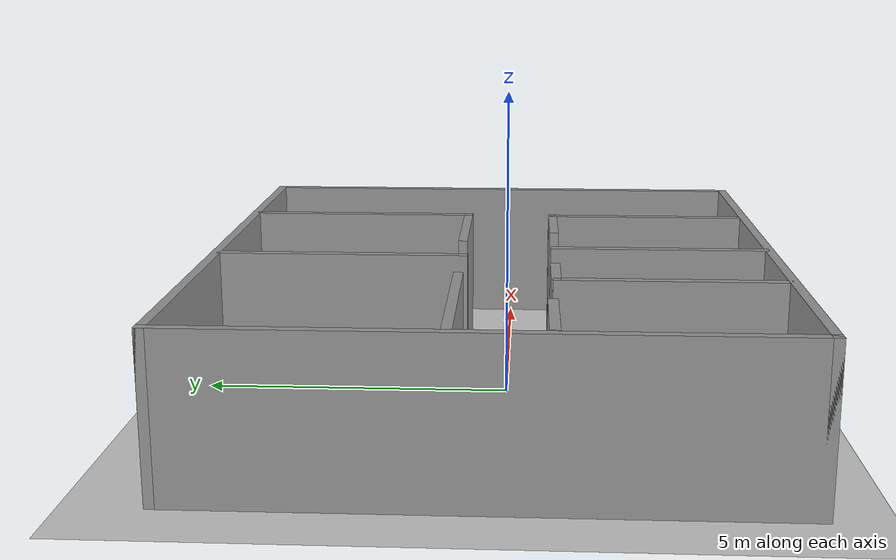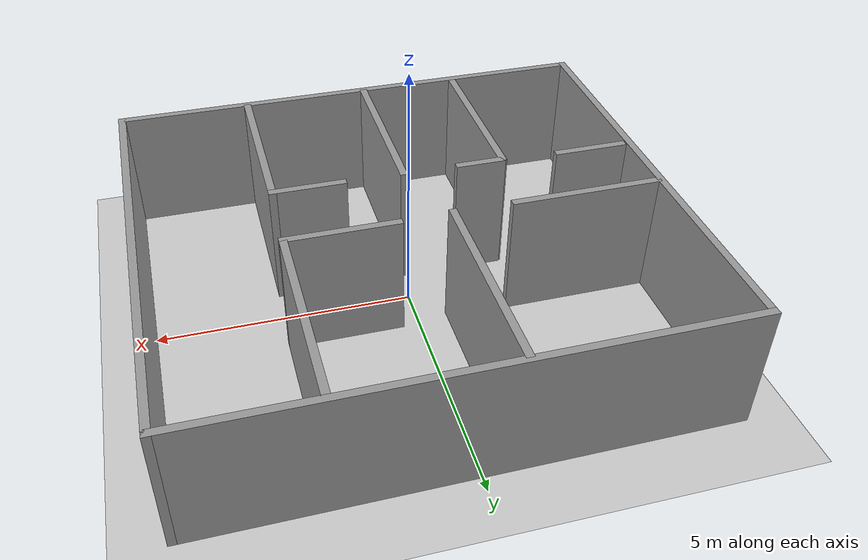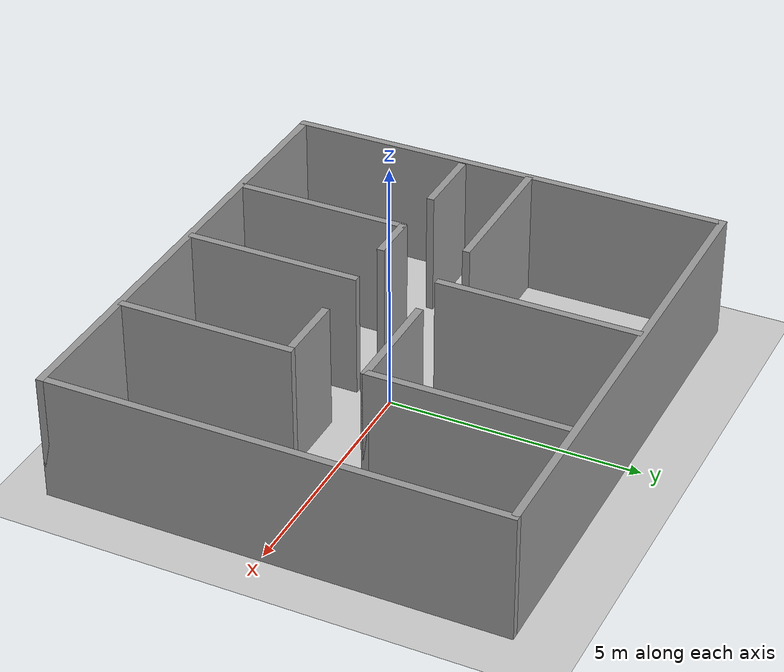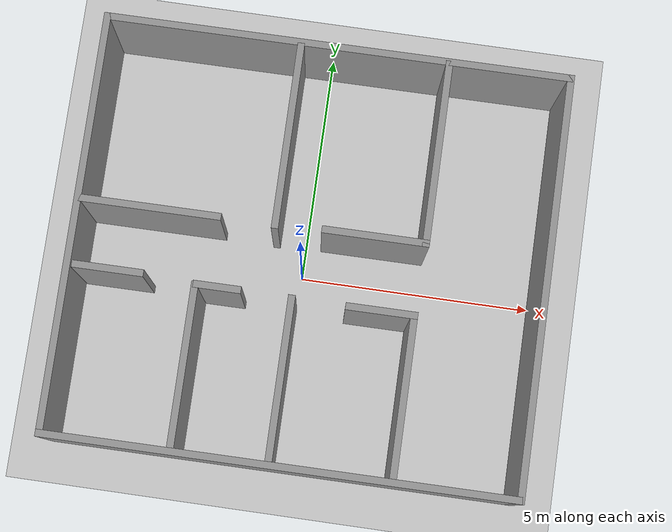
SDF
<sdf version="1.7">
 <world name="default">
  <light name="sun" type="directional">
   <pose>0 0 10 0 -0 0</pose>
   <diffuse>0.8 0.8 0.8 1</diffuse>
   <specular>0.2 0.2 0.2 1</specular>
   <attenuation>
    <range>1000</range>
    <constant>0.9</constant>
    <linear>0.01</linear>
    <quadratic>0.001</quadratic>
   </attenuation>
   <direction>-0.5 0.1 -0.9</direction>
   <spot><inner_angle>0</inner_angle><outer_angle>0</outer_angle><falloff>0</falloff></spot>
  </light>
  <model name="ground_plane">
   <static>1</static>
   <link name="link">
    <collision name="collision">
     <geometry><plane><normal>0 0 1</normal><size>100 100</size></plane></geometry>
     <surface>
      <contact><collide_bitmask>65535</collide_bitmask></contact>
      <friction><ode><mu>100</mu><mu2>50</mu2></ode></friction>
     </surface>
    </collision>
    <visual name="visual">
     <cast_shadows>0</cast_shadows>
     <geometry><plane><normal>0 0 1</normal><size>100 100</size></plane></geometry>
     <material>
      <script><uri>file://media/materials/scripts/gazebo.material</uri><name>Gazebo/Grey</name></script>
     </material>
    </visual>
   </link>
  </model>
  <gravity>0 0 -9.8</gravity>
  <magnetic_field>6e-06 2.3e-05 -4.2e-05</magnetic_field>
  <atmosphere type="adiabatic"/>
  <physics type="ode">
   <max_step_size>0.001</max_step_size>
   <real_time_factor>1</real_time_factor>
   <real_time_update_rate>1000</real_time_update_rate>
  </physics>
  <scene><ambient>0.4 0.4 0.4 1</ambient><background>0.7 0.7 0.7 1</background><shadows>1</shadows></scene>
  <audio><device>default</device></audio>
  <spherical_coordinates>
   <surface_model>EARTH_WGS84</surface_model>
   <latitude_deg>0</latitude_deg>
   <longitude_deg>0</longitude_deg>
   <elevation>0</elevation>
   <heading_deg>0</heading_deg>
  </spherical_coordinates>
  <model name="room2">
   <pose>0.13719 -1.24531 0 0 0 -1.56805</pose>
   <link name="Wall_0">
    <collision name="Wall_0_Collision">
     <geometry><box><size>9 0.15 2.5</size></box></geometry>
     <pose>0 0 1.25 0 -0 0</pose>
    </collision>
    <visual name="Wall_0_Visual">
     <pose>0 0 1.25 0 -0 0</pose>
     <geometry><box><size>9 0.15 2.5</size></box></geometry>
     <material>
      <script><uri>file://media/materials/scripts/gazebo.material</uri><name>Gazebo/Grey</name></script>
      <ambient>1 1 1 1</ambient>
     </material>
     <meta><layer>0</layer></meta>
    </visual>
    <pose>-1.46428 4.925 0 0 -0 0</pose>
   </link>
   <link name="Wall_10">
    <collision name="Wall_10_Collision">
     <geometry><box><size>2.25 0.15 2.5</size></box></geometry>
     <pose>0 0 1.25 0 -0 0</pose>
    </collision>
    <visual name="Wall_10_Visual">
     <pose>0 0 1.25 0 -0 0</pose>
     <geometry><box><size>2.25 0.15 2.5</size></box></geometry>
     <material>
      <script><uri>file://media/materials/scripts/gazebo.material</uri><name>Gazebo/Grey</name></script>
      <ambient>1 1 1 1</ambient>
     </material>
     <meta><layer>0</layer></meta>
    </visual>
    <pose>-1.99031 1.30907 0 0 -0 -1.5708</pose>
   </link>
   <link name="Wall_12">
    <collision name="Wall_12_Collision">
     <geometry><box><size>4 0.15 2.5</size></box></geometry>
     <pose>0 0 1.25 0 -0 0</pose>
    </collision>
    <visual name="Wall_12_Visual">
     <pose>0 0 1.25 0 -0 0</pose>
     <geometry><box><size>4 0.15 2.5</size></box></geometry>
     <material>
      <script><uri>file://media/materials/scripts/gazebo.material</uri><name>Gazebo/Grey</name></script>
      <ambient>1 1 1 1</ambient>
     </material>
     <meta><layer>0</layer></meta>
    </visual>
    <pose>-3.86905 -0.786697 0 0 -0 0</pose>
   </link>
   <link name="Wall_14">
    <collision name="Wall_14_Collision">
     <geometry><box><size>3 0.15 2.5</size></box></geometry>
     <pose>0 0 1.25 0 -0 0</pose>
    </collision>
    <visual name="Wall_14_Visual">
     <pose>0 0 1.25 0 -0 0</pose>
     <geometry><box><size>3 0.15 2.5</size></box></geometry>
     <material>
      <script><uri>file://media/materials/scripts/gazebo.material</uri><name>Gazebo/Grey</name></script>
      <ambient>1 1 1 1</ambient>
     </material>
     <meta><layer>0</layer></meta>
    </visual>
    <pose>-1.95437 -3.41449 0 0 -0 -1.5708</pose>
   </link>
   <link name="Wall_16">
    <collision name="Wall_16_Collision">
     <geometry><box><size>3.5 0.15 2.5</size></box></geometry>
     <pose>0 0 1.25 0 -0 0</pose>
    </collision>
    <visual name="Wall_16_Visual">
     <pose>0 0 1.25 0 -0 0</pose>
     <geometry><box><size>3.5 0.15 2.5</size></box></geometry>
     <material>
      <script><uri>file://media/materials/scripts/gazebo.material</uri><name>Gazebo/Grey</name></script>
      <ambient>1 1 1 1</ambient>
     </material>
     <meta><layer>0</layer></meta>
    </visual>
    <pose>1.20493 2.3128 0 0 -0 3.14159</pose>
   </link>
   <link name="Wall_19">
    <collision name="Wall_19_Collision">
     <geometry><box><size>3.5 0.15 2.5</size></box></geometry>
     <pose>0 0 1.25 0 -0 0</pose>
    </collision>
    <visual name="Wall_19_Visual">
     <pose>0 0 1.25 0 -0 0</pose>
     <geometry><box><size>3.5 0.15 2.5</size></box></geometry>
     <material>
      <script><uri>file://media/materials/scripts/gazebo.material</uri><name>Gazebo/Grey</name></script>
      <ambient>1 1 1 1</ambient>
     </material>
     <meta><layer>0</layer></meta>
    </visual>
    <pose>1.20493 -0.231562 0 0 -0 3.14159</pose>
   </link>
   <link name="Wall_2">
    <collision name="Wall_2_Collision">
     <geometry><box><size>10 0.15 2.5</size></box></geometry>
     <pose>0 0 1.25 0 -0 0</pose>
    </collision>
    <visual name="Wall_2_Visual">
     <pose>0 0 1.25 0 -0 0</pose>
     <geometry><box><size>10 0.15 2.5</size></box></geometry>
     <material>
      <script><uri>file://media/materials/scripts/gazebo.material</uri><name>Gazebo/Grey</name></script>
      <ambient>1 1 1 1</ambient>
     </material>
     <meta><layer>0</layer></meta>
    </visual>
    <pose>-5.88928 -0 0 0 -0 -1.5708</pose>
   </link>
   <link name="Wall_25">
    <collision name="Wall_25_Collision">
     <geometry><box><size>1.5 0.15 2.5</size></box></geometry>
     <pose>0 0 1.25 0 -0 0</pose>
    </collision>
    <visual name="Wall_25_Visual">
     <pose>0 0 1.25 0 -0 0</pose>
     <geometry><box><size>1.5 0.15 2.5</size></box></geometry>
     <material>
      <script><uri>file://media/materials/scripts/gazebo.material</uri><name>Gazebo/Grey</name></script>
      <ambient>1 1 1 1</ambient>
     </material>
     <meta><layer>0</layer></meta>
    </visual>
    <pose>-0.47007 1.6378 0 0 -0 -1.5708</pose>
   </link>
   <link name="Wall_28">
    <collision name="Wall_28_Collision">
     <geometry><box><size>3.5 0.15 2.5</size></box></geometry>
     <pose>0 0 1.25 0 -0 0</pose>
    </collision>
    <visual name="Wall_28_Visual">
     <pose>0 0 1.25 0 -0 0</pose>
     <geometry><box><size>3.5 0.15 2.5</size></box></geometry>
     <material>
      <script><uri>file://media/materials/scripts/gazebo.material</uri><name>Gazebo/Grey</name></script>
      <ambient>1 1 1 1</ambient>
     </material>
     <meta><layer>0</layer></meta>
    </visual>
    <pose>1.20049 -2.24392 0 0 -0 3.14159</pose>
   </link>
   <link name="Wall_3">
    <collision name="Wall_3_Collision">
     <geometry><box><size>9 0.15 2.5</size></box></geometry>
     <pose>0 0 1.25 0 -0 0</pose>
    </collision>
    <visual name="Wall_3_Visual">
     <pose>0 0 1.25 0 -0 0</pose>
     <geometry><box><size>9 0.15 2.5</size></box></geometry>
     <material>
      <script><uri>file://media/materials/scripts/gazebo.material</uri><name>Gazebo/Grey</name></script>
      <ambient>1 1 1 1</ambient>
     </material>
     <meta><layer>0</layer></meta>
    </visual>
    <pose>-1.46428 -4.925 0 0 -0 0</pose>
   </link>
   <link name="Wall_30">
    <collision name="Wall_30_Collision">
     <geometry><box><size>1 0.15 2.5</size></box></geometry>
     <pose>0 0 1.25 0 -0 0</pose>
    </collision>
    <visual name="Wall_30_Visual">
     <pose>0 0 1.25 0 -0 0</pose>
     <geometry><box><size>1 0.15 2.5</size></box></geometry>
     <material>
      <script><uri>file://media/materials/scripts/gazebo.material</uri><name>Gazebo/Grey</name></script>
      <ambient>1 1 1 1</ambient>
     </material>
     <meta><layer>0</layer></meta>
    </visual>
    <pose>-0.497139 -1.78553 0 0 -0 -1.5708</pose>
   </link>
   <link name="Wall_32">
    <collision name="Wall_32_Collision">
     <geometry><box><size>1.5 0.15 2.5</size></box></geometry>
     <pose>0 0 1.25 0 -0 0</pose>
    </collision>
    <visual name="Wall_32_Visual">
     <pose>0 0 1.25 0 -0 0</pose>
     <geometry><box><size>1.5 0.15 2.5</size></box></geometry>
     <material>
      <script><uri>file://media/materials/scripts/gazebo.material</uri><name>Gazebo/Grey</name></script>
      <ambient>1 1 1 1</ambient>
     </material>
     <meta><layer>0</layer></meta>
    </visual>
    <pose>-0.566531 -4.07546 0 0 -0 -1.5708</pose>
   </link>
   <link name="Wall_4">
    <collision name="Wall_4_Collision">
     <geometry><box><size>10 0.15 2.5</size></box></geometry>
     <pose>0 0 1.25 0 -0 0</pose>
    </collision>
    <visual name="Wall_4_Visual">
     <pose>0 0 1.25 0 -0 0</pose>
     <geometry><box><size>10 0.15 2.5</size></box></geometry>
     <material>
      <script><uri>file://media/materials/scripts/gazebo.material</uri><name>Gazebo/Grey</name></script>
      <ambient>1 1 1 1</ambient>
     </material>
     <meta><layer>0</layer></meta>
    </visual>
    <pose>2.96072 -0 0 0 -0 1.5708</pose>
   </link>
   <link name="Wall_8">
    <collision name="Wall_8_Collision">
     <geometry><box><size>4 0.15 2.5</size></box></geometry>
     <pose>0 0 1.25 0 -0 0</pose>
    </collision>
    <visual name="Wall_8_Visual">
     <pose>0 0 1.25 0 -0 0</pose>
     <geometry><box><size>4 0.15 2.5</size></box></geometry>
     <material>
      <script><uri>file://media/materials/scripts/gazebo.material</uri><name>Gazebo/Grey</name></script>
      <ambient>1 1 1 1</ambient>
     </material>
     <meta><layer>0</layer></meta>
    </visual>
    <pose>-3.91531 2.35907 0 0 -0 0</pose>
   </link>
   <static>1</static>
  </model>
 </world>
</sdf>
